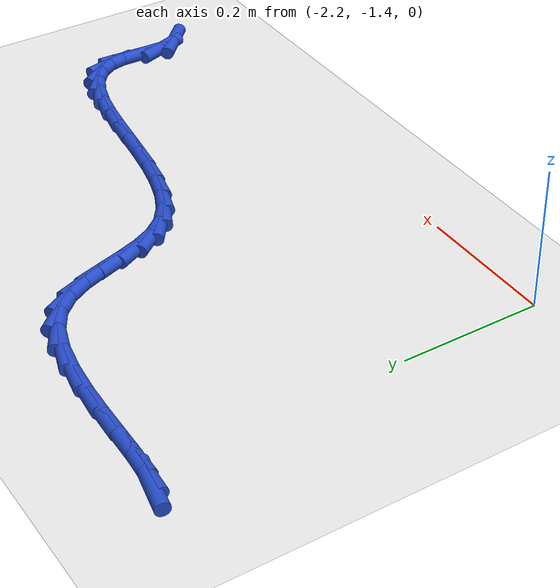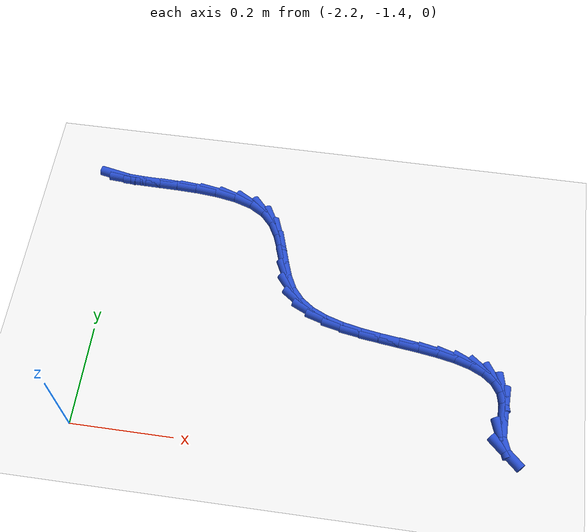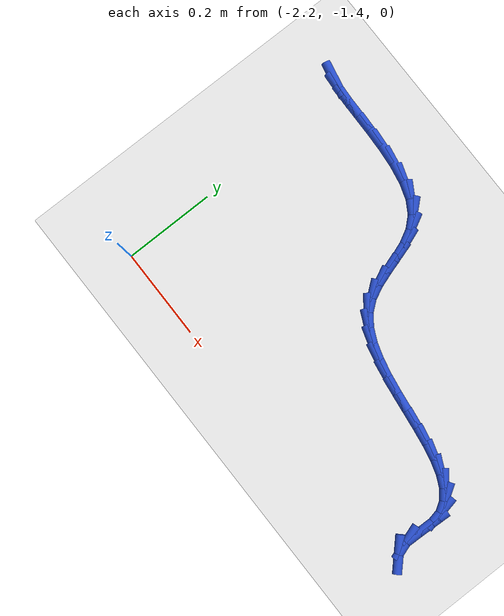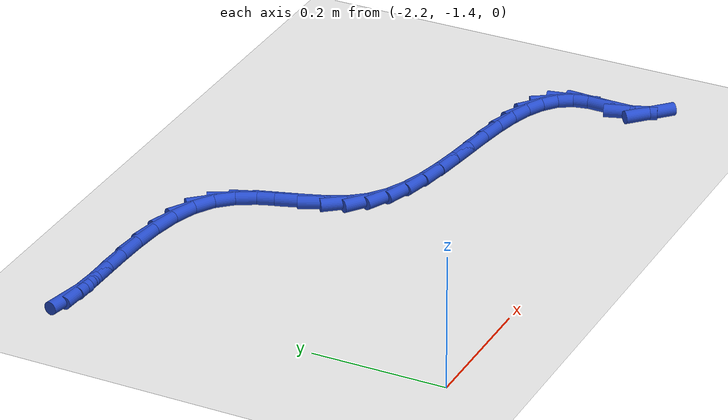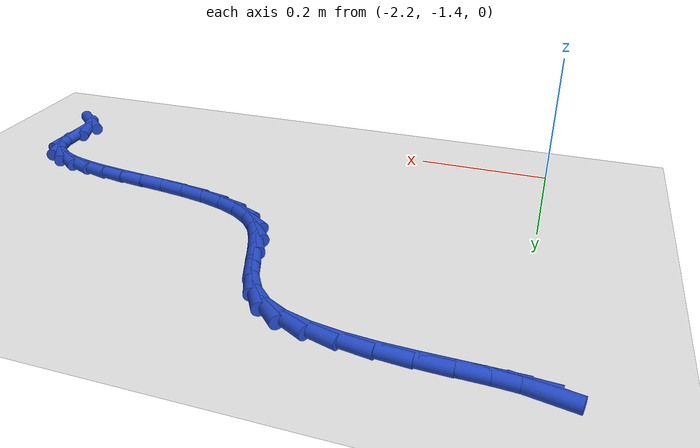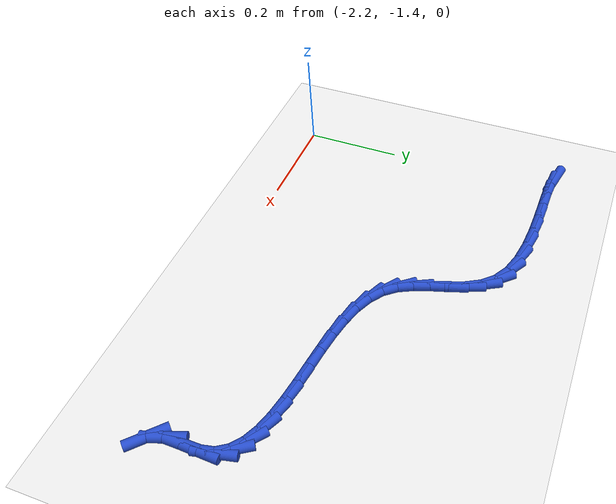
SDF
<sdf version="1.6">
 <world name="default">
  <model name="ground_plane">
   <static>1</static>
   <link name="link">
    <collision name="collision">
     <geometry><plane><normal>0 0 1</normal><size>100 100</size></plane></geometry>
     <surface><friction><ode><mu>100</mu><mu2>50</mu2></ode></friction></surface>
    </collision>
    <visual name="visual">
     <cast_shadows>0</cast_shadows>
     <geometry><plane><normal>0 0 1</normal><size>100 100</size></plane></geometry>
     <material>
      <script><uri>file://media/materials/scripts/gazebo.material</uri><name>Gazebo/WhiteGlow</name></script>
     </material>
    </visual>
   </link>
  </model>
  <model name="line">
   <link name="link_167">
    <pose>-2.2301220264945116 -0.8412498804856774 0.01 0 1.57 -0.1972960834218429</pose>
    <collision name="collision">
     <geometry><cylinder><radius>0.01</radius><length>0.08</length></cylinder></geometry>
    </collision>
    <visual name="visual">
     <material>
      <script><name>Gazebo/Blue</name><uri>file://media/materials/scripts/gazebo.material</uri></script>
     </material>
     <geometry><cylinder><radius>0.01</radius><length>0.08</length></cylinder></geometry>
    </visual>
   </link>
   <link name="link_168">
    <pose>-2.2083366782781795 -0.8456046963600067 0.01 0 1.57 -0.06406123928914355</pose>
    <collision name="collision">
     <geometry><cylinder><radius>0.01</radius><length>0.08</length></cylinder></geometry>
    </collision>
    <visual name="visual">
     <material>
      <script><name>Gazebo/Blue</name><uri>file://media/materials/scripts/gazebo.material</uri></script>
     </material>
     <geometry><cylinder><radius>0.01</radius><length>0.08</length></cylinder></geometry>
    </visual>
   </link>
   <link name="link_169">
    <pose>-2.1778380904767576 -0.8475611507504492 0.01 0 1.57 -0.01916983150409414</pose>
    <collision name="collision">
     <geometry><cylinder><radius>0.01</radius><length>0.08</length></cylinder></geometry>
    </collision>
    <visual name="visual">
     <material>
      <script><name>Gazebo/Blue</name><uri>file://media/materials/scripts/gazebo.material</uri></script>
     </material>
     <geometry><cylinder><radius>0.01</radius><length>0.08</length></cylinder></geometry>
    </visual>
   </link>
   <link name="link_170">
    <pose>-2.140842326907728 -0.8482704401903661 0.01 0 1.57 -0.014857614207397112</pose>
    <collision name="collision">
     <geometry><cylinder><radius>0.01</radius><length>0.08</length></cylinder></geometry>
    </collision>
    <visual name="visual">
     <material>
      <script><name>Gazebo/Blue</name><uri>file://media/materials/scripts/gazebo.material</uri></script>
     </material>
     <geometry><cylinder><radius>0.01</radius><length>0.08</length></cylinder></geometry>
    </visual>
   </link>
   <link name="link_171">
    <pose>-2.099565451388572 -0.8488837612131201 0.01 0 1.57 -0.03847834710303716</pose>
    <collision name="collision">
     <geometry><cylinder><radius>0.01</radius><length>0.08</length></cylinder></geometry>
    </collision>
    <visual name="visual">
     <material>
      <script><name>Gazebo/Blue</name><uri>file://media/materials/scripts/gazebo.material</uri></script>
     </material>
     <geometry><cylinder><radius>0.01</radius><length>0.08</length></cylinder></geometry>
    </visual>
   </link>
   <link name="link_172">
    <pose>-2.056223527736771 -0.8505523103520727 0.01 0 1.57 -0.08947778776928261</pose>
    <collision name="collision">
     <geometry><cylinder><radius>0.01</radius><length>0.08</length></cylinder></geometry>
    </collision>
    <visual name="visual">
     <material>
      <script><name>Gazebo/Blue</name><uri>file://media/materials/scripts/gazebo.material</uri></script>
     </material>
     <geometry><cylinder><radius>0.01</radius><length>0.08</length></cylinder></geometry>
    </visual>
   </link>
   <link name="link_173">
    <pose>-2.01303261976981 -0.8544272841405862 0.01 0 1.57 -0.175346541767451</pose>
    <collision name="collision">
     <geometry><cylinder><radius>0.01</radius><length>0.08</length></cylinder></geometry>
    </collision>
    <visual name="visual">
     <material>
      <script><name>Gazebo/Blue</name><uri>file://media/materials/scripts/gazebo.material</uri></script>
     </material>
     <geometry><cylinder><radius>0.01</radius><length>0.08</length></cylinder></geometry>
    </visual>
   </link>
   <link name="link_174">
    <pose>-1.9722087913051685 -0.8616598791120222 0.01 0 1.57 -0.31331295106305446</pose>
    <collision name="collision">
     <geometry><cylinder><radius>0.01</radius><length>0.08</length></cylinder></geometry>
    </collision>
    <visual name="visual">
     <material>
      <script><name>Gazebo/Blue</name><uri>file://media/materials/scripts/gazebo.material</uri></script>
     </material>
     <geometry><cylinder><radius>0.01</radius><length>0.08</length></cylinder></geometry>
    </visual>
   </link>
   <link name="link_175">
    <pose>-1.935968106160331 -0.8734012917997431 0.01 0 1.57 -0.5337725612092614</pose>
    <collision name="collision">
     <geometry><cylinder><radius>0.01</radius><length>0.08</length></cylinder></geometry>
    </collision>
    <visual name="visual">
     <material>
      <script><name>Gazebo/Blue</name><uri>file://media/materials/scripts/gazebo.material</uri></script>
     </material>
     <geometry><cylinder><radius>0.01</radius><length>0.08</length></cylinder></geometry>
    </visual>
   </link>
   <link name="link_176">
    <pose>-1.9065253238388464 -0.8908018566121058 0.01 0 1.57 -0.830449174927743</pose>
    <collision name="collision">
     <geometry><cylinder><radius>0.01</radius><length>0.08</length></cylinder></geometry>
    </collision>
    <visual name="visual">
     <material>
      <script><name>Gazebo/Blue</name><uri>file://media/materials/scripts/gazebo.material</uri></script>
     </material>
     <geometry><cylinder><radius>0.01</radius><length>0.08</length></cylinder></geometry>
    </visual>
   </link>
   <link name="link_177">
    <pose>-1.8850407842410524 -0.9143149580250237 0.01 0 1.57 -1.0719957895055023</pose>
    <collision name="collision">
     <geometry><cylinder><radius>0.01</radius><length>0.08</length></cylinder></geometry>
    </collision>
    <visual name="visual">
     <material>
      <script><name>Gazebo/Blue</name><uri>file://media/materials/scripts/gazebo.material</uri></script>
     </material>
     <geometry><cylinder><radius>0.01</radius><length>0.08</length></cylinder></geometry>
    </visual>
   </link>
   <link name="link_178">
    <pose>-1.8697194765001381 -0.9424405537085941 0.01 0 1.57 -1.2154328987152159</pose>
    <collision name="collision">
     <geometry><cylinder><radius>0.01</radius><length>0.08</length></cylinder></geometry>
    </collision>
    <visual name="visual">
     <material>
      <script><name>Gazebo/Blue</name><uri>file://media/materials/scripts/gazebo.material</uri></script>
     </material>
     <geometry><cylinder><radius>0.01</radius><length>0.08</length></cylinder></geometry>
    </visual>
   </link>
   <link name="link_179">
    <pose>-1.8582525123521678 -0.9733389388151426 0.01 0 1.57 -1.2686507660860136</pose>
    <collision name="collision">
     <geometry><cylinder><radius>0.01</radius><length>0.08</length></cylinder></geometry>
    </collision>
    <visual name="visual">
     <material>
      <script><name>Gazebo/Blue</name><uri>file://media/materials/scripts/gazebo.material</uri></script>
     </material>
     <geometry><cylinder><radius>0.01</radius><length>0.08</length></cylinder></geometry>
    </visual>
   </link>
   <link name="link_180">
    <pose>-1.8483310035332043 -1.005170408496999 0.01 0 1.57 -1.2381242907183165</pose>
    <collision name="collision">
     <geometry><cylinder><radius>0.01</radius><length>0.08</length></cylinder></geometry>
    </collision>
    <visual name="visual">
     <material>
      <script><name>Gazebo/Blue</name><uri>file://media/materials/scripts/gazebo.material</uri></script>
     </material>
     <geometry><cylinder><radius>0.01</radius><length>0.08</length></cylinder></geometry>
    </visual>
   </link>
   <link name="link_181">
    <pose>-1.8376460617793111 -1.0360952579064897 0.01 0 1.57 -1.1166186608089554</pose>
    <collision name="collision">
     <geometry><cylinder><radius>0.01</radius><length>0.08</length></cylinder></geometry>
    </collision>
    <visual name="visual">
     <material>
      <script><name>Gazebo/Blue</name><uri>file://media/materials/scripts/gazebo.material</uri></script>
     </material>
     <geometry><cylinder><radius>0.01</radius><length>0.08</length></cylinder></geometry>
    </visual>
   </link>
   <link name="link_182">
    <pose>-1.823888798826552 -1.0642737821959434 0.01 0 1.57 -0.8915071230112517</pose>
    <collision name="collision">
     <geometry><cylinder><radius>0.01</radius><length>0.08</length></cylinder></geometry>
    </collision>
    <visual name="visual">
     <material>
      <script><name>Gazebo/Blue</name><uri>file://media/materials/scripts/gazebo.material</uri></script>
     </material>
     <geometry><cylinder><radius>0.01</radius><length>0.08</length></cylinder></geometry>
    </visual>
   </link>
   <link name="link_183">
    <pose>-1.804804029445707 -1.0879085683870175 0.01 0 1.57 -0.6345554164256607</pose>
    <collision name="collision">
     <geometry><cylinder><radius>0.01</radius><length>0.08</length></cylinder></geometry>
    </collision>
    <visual name="visual">
     <material>
      <script><name>Gazebo/Blue</name><uri>file://media/materials/scripts/gazebo.material</uri></script>
     </material>
     <geometry><cylinder><radius>0.01</radius><length>0.08</length></cylinder></geometry>
    </visual>
   </link>
   <link name="link_184">
    <pose>-1.7796702010627024 -1.106409960049766 0.01 0 1.57 -0.4379138361662409</pose>
    <collision name="collision">
     <geometry><cylinder><radius>0.01</radius><length>0.08</length></cylinder></geometry>
    </collision>
    <visual name="visual">
     <material>
      <script><name>Gazebo/Blue</name><uri>file://media/materials/scripts/gazebo.material</uri></script>
     </material>
     <geometry><cylinder><radius>0.01</radius><length>0.08</length></cylinder></geometry>
    </visual>
   </link>
   <link name="link_185">
    <pose>-1.749486184696929 -1.120543157703894 0.01 0 1.57 -0.3010695029484508</pose>
    <collision name="collision">
     <geometry><cylinder><radius>0.01</radius><length>0.08</length></cylinder></geometry>
    </collision>
    <visual name="visual">
     <material>
      <script><name>Gazebo/Blue</name><uri>file://media/materials/scripts/gazebo.material</uri></script>
     </material>
     <geometry><cylinder><radius>0.01</radius><length>0.08</length></cylinder></geometry>
    </visual>
   </link>
   <link name="link_186">
    <pose>-1.715342067351522 -1.1311451956953567 0.01 0 1.57 -0.21048140616146843</pose>
    <collision name="collision">
     <geometry><cylinder><radius>0.01</radius><length>0.08</length></cylinder></geometry>
    </collision>
    <visual name="visual">
     <material>
      <script><name>Gazebo/Blue</name><uri>file://media/materials/scripts/gazebo.material</uri></script>
     </material>
     <geometry><cylinder><radius>0.01</radius><length>0.08</length></cylinder></geometry>
    </visual>
   </link>
   <link name="link_187">
    <pose>-1.6783279360296157 -1.1390531083701108 0.01 0 1.57 -0.1547262326172534</pose>
    <collision name="collision">
     <geometry><cylinder><radius>0.01</radius><length>0.08</length></cylinder></geometry>
    </collision>
    <visual name="visual">
     <material>
      <script><name>Gazebo/Blue</name><uri>file://media/materials/scripts/gazebo.material</uri></script>
     </material>
     <geometry><cylinder><radius>0.01</radius><length>0.08</length></cylinder></geometry>
    </visual>
   </link>
   <link name="link_188">
    <pose>-1.6395338777343453 -1.1451039300741115 0.01 0 1.57 -0.12673024010646425</pose>
    <collision name="collision">
     <geometry><cylinder><radius>0.01</radius><length>0.08</length></cylinder></geometry>
    </collision>
    <visual name="visual">
     <material>
      <script><name>Gazebo/Blue</name><uri>file://media/materials/scripts/gazebo.material</uri></script>
     </material>
     <geometry><cylinder><radius>0.01</radius><length>0.08</length></cylinder></geometry>
    </visual>
   </link>
   <link name="link_189">
    <pose>-1.6000499794688436 -1.1501346951533153 0.01 0 1.57 -0.12340478153810837</pose>
    <collision name="collision">
     <geometry><cylinder><radius>0.01</radius><length>0.08</length></cylinder></geometry>
    </collision>
    <visual name="visual">
     <material>
      <script><name>Gazebo/Blue</name><uri>file://media/materials/scripts/gazebo.material</uri></script>
     </material>
     <geometry><cylinder><radius>0.01</radius><length>0.08</length></cylinder></geometry>
    </visual>
   </link>
   <link name="link_190">
    <pose>-1.560966328236248 -1.1549824379536784 0.01 0 1.57 -0.1453176623588264</pose>
    <collision name="collision">
     <geometry><cylinder><radius>0.01</radius><length>0.08</length></cylinder></geometry>
    </collision>
    <visual name="visual">
     <material>
      <script><name>Gazebo/Blue</name><uri>file://media/materials/scripts/gazebo.material</uri></script>
     </material>
     <geometry><cylinder><radius>0.01</radius><length>0.08</length></cylinder></geometry>
    </visual>
   </link>
   <link name="link_191">
    <pose>-1.5233730110396906 -1.1604841928211567 0.01 0 1.57 -0.19712701935037882</pose>
    <collision name="collision">
     <geometry><cylinder><radius>0.01</radius><length>0.08</length></cylinder></geometry>
    </collision>
    <visual name="visual">
     <material>
      <script><name>Gazebo/Blue</name><uri>file://media/materials/scripts/gazebo.material</uri></script>
     </material>
     <geometry><cylinder><radius>0.01</radius><length>0.08</length></cylinder></geometry>
    </visual>
   </link>
   <link name="link_192">
    <pose>-1.4883601148823076 -1.1674769941017054 0.01 0 1.57 -0.28905968060063836</pose>
    <collision name="collision">
     <geometry><cylinder><radius>0.01</radius><length>0.08</length></cylinder></geometry>
    </collision>
    <visual name="visual">
     <material>
      <script><name>Gazebo/Blue</name><uri>file://media/materials/scripts/gazebo.material</uri></script>
     </material>
     <geometry><cylinder><radius>0.01</radius><length>0.08</length></cylinder></geometry>
    </visual>
   </link>
   <link name="link_193">
    <pose>-1.457017726767233 -1.1767978761412816 0.01 0 1.57 -0.4391314404600308</pose>
    <collision name="collision">
     <geometry><cylinder><radius>0.01</radius><length>0.08</length></cylinder></geometry>
    </collision>
    <visual name="visual">
     <material>
      <script><name>Gazebo/Blue</name><uri>file://media/materials/scripts/gazebo.material</uri></script>
     </material>
     <geometry><cylinder><radius>0.01</radius><length>0.08</length></cylinder></geometry>
    </visual>
   </link>
   <link name="link_194">
    <pose>-1.4304359336976005 -1.189283873285841 0.01 0 1.57 -0.6718890166552016</pose>
    <collision name="collision">
     <geometry><cylinder><radius>0.01</radius><length>0.08</length></cylinder></geometry>
    </collision>
    <visual name="visual">
     <material>
      <script><name>Gazebo/Blue</name><uri>file://media/materials/scripts/gazebo.material</uri></script>
     </material>
     <geometry><cylinder><radius>0.01</radius><length>0.08</length></cylinder></geometry>
    </visual>
   </link>
   <link name="link_195">
    <pose>-1.4097048226765465 -1.2057720198813389 0.01 0 1.57 -0.9968119986067335</pose>
    <collision name="collision">
     <geometry><cylinder><radius>0.01</radius><length>0.08</length></cylinder></geometry>
    </collision>
    <visual name="visual">
     <material>
      <script><name>Gazebo/Blue</name><uri>file://media/materials/scripts/gazebo.material</uri></script>
     </material>
     <geometry><cylinder><radius>0.01</radius><length>0.08</length></cylinder></geometry>
    </visual>
   </link>
   <link name="link_196">
    <pose>-1.3959144807072033 -1.2270993502737324 0.01 0 1.57 -1.360655398871795</pose>
    <collision name="collision">
     <geometry><cylinder><radius>0.01</radius><length>0.08</length></cylinder></geometry>
    </collision>
    <visual name="visual">
     <material>
      <script><name>Gazebo/Blue</name><uri>file://media/materials/scripts/gazebo.material</uri></script>
     </material>
     <geometry><cylinder><radius>0.01</radius><length>0.08</length></cylinder></geometry>
    </visual>
   </link>
   <link name="link_197">
    <pose>-1.3901549116424117 -1.2541028433175996 0.01 0 1.57 1.5276726135842493</pose>
    <collision name="collision">
     <geometry><cylinder><radius>0.01</radius><length>0.08</length></cylinder></geometry>
    </collision>
    <visual name="visual">
     <material>
      <script><name>Gazebo/Blue</name><uri>file://media/materials/scripts/gazebo.material</uri></script>
     </material>
     <geometry><cylinder><radius>0.01</radius><length>0.08</length></cylinder></geometry>
    </visual>
   </link>
   <link name="link_198">
    <pose>-1.3915443901262974 -1.286303620036353 0.01 0 1.57 1.5528615515112305</pose>
    <collision name="collision">
     <geometry><cylinder><radius>0.01</radius><length>0.08</length></cylinder></geometry>
    </collision>
    <visual name="visual">
     <material>
      <script><name>Gazebo/Blue</name><uri>file://media/materials/scripts/gazebo.material</uri></script>
     </material>
     <geometry><cylinder><radius>0.01</radius><length>0.08</length></cylinder></geometry>
    </visual>
   </link>
   <link name="link_199">
    <pose>-1.392121856760569 -1.318498320475985 0.01 0 1.57 -1.2424944407260738</pose>
    <collision name="collision">
     <geometry><cylinder><radius>0.01</radius><length>0.08</length></cylinder></geometry>
    </collision>
    <visual name="visual">
     <material>
      <script><name>Gazebo/Blue</name><uri>file://media/materials/scripts/gazebo.material</uri></script>
     </material>
     <geometry><cylinder><radius>0.01</radius><length>0.08</length></cylinder></geometry>
    </visual>
   </link>
   <link name="link_200">
    <pose>-1.3831338610705783 -1.3448848158936866 0.01 0 1.57 -0.7582754684327779</pose>
    <collision name="collision">
     <geometry><cylinder><radius>0.01</radius><length>0.08</length></cylinder></geometry>
    </collision>
    <visual name="visual">
     <material>
      <script><name>Gazebo/Blue</name><uri>file://media/materials/scripts/gazebo.material</uri></script>
     </material>
     <geometry><cylinder><radius>0.01</radius><length>0.08</length></cylinder></geometry>
    </visual>
   </link>
  </model>
 </world>
</sdf>
